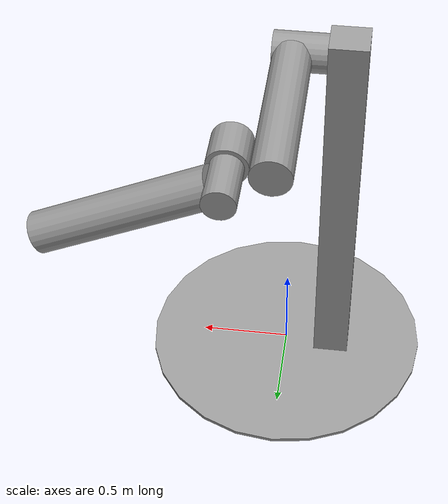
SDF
<?xml version='1.0'?>
<sdf version="1.4">
  <model name="double_pendulum_with_base">
    <link name="base">
      <inertial>
        <mass>100</mass>
        <inertia>
          <ixx>1.0</ixx> <ixy>0.0</ixy> <ixz>0.0</ixz>
          <iyy>2.0</iyy> <iyz>0.0</iyz>
          <izz>3.0</izz>
        </inertia>
      </inertial>
      <visual name="vis_plate_on_ground">
        <pose>0 0 0.01  0 0 0</pose>
        <geometry>
          <cylinder>
            <radius>0.8</radius>
            <length>0.02</length>
          </cylinder>
        </geometry>
        <material>
          <script>
            <uri>file://media/materials/scripts/gazebo.material</uri>
            <name>Gazebo/Grey</name>
          </script>
        </material>
      </visual>
      <visual name="vis_pole">
        <pose>-0.275 0 1.1  0 0 0</pose>
        <geometry>
          <box><size>0.2 0.2 2.2</size></box>
        </geometry>
        <material>
          <script>
            <uri>file://media/materials/scripts/gazebo.material</uri>
            <name>Gazebo/Grey</name>
          </script>
        </material>
      </visual>
      <collision name="col_plate_on_ground">
        <pose>0 0 0.01  0 0 0</pose>
        <geometry>
          <cylinder>
            <radius>0.8</radius>
            <length>0.02</length>
          </cylinder>
        </geometry>
      </collision>
      <collision name="col_pole">
        <pose>-0.275 0 1.1  0 0 0</pose>
        <geometry>
          <box><size>0.2 0.2 2.2</size></box>
        </geometry>
      </collision>
    </link>
    <!-- upper link, length 1, IC -90 degrees -->
    <link name="upper_link">
      <pose>0 0 2.1  -1.5708 0 0</pose>
      <self_collide>0</self_collide>
      <inertial>
        <pose>0 0 0.5  0 0 0</pose>
        <mass>1.0</mass>
        <inertia>
          <ixx>0.01</ixx> <ixy>0.0</ixy> <ixz>0.0</ixz>
          <iyy>0.00002</iyy> <iyz>0.0</iyz>
          <izz>0.00003</izz>
        </inertia>
      </inertial>
      <visual name="vis_upper_joint">
        <pose>-0.05 0 0  0 1.5708 0</pose>
        <geometry>
          <cylinder>
            <radius>0.1</radius>
            <length>0.3</length>
          </cylinder>
        </geometry>
        <material>
          <script>
            <uri>file://media/materials/scripts/gazebo.material</uri>
            <name>Gazebo/Grey</name>
          </script>
        </material>
      </visual>
      <visual name="vis_lower_joint">
        <pose>0.2 0 0.8  0 0 0</pose>
        <geometry>
          <cylinder>
            <radius>0.1</radius>
            <length>0.2</length>
          </cylinder>
        </geometry>
        <material>
          <script>
            <uri>file://media/materials/scripts/gazebo.material</uri>
            <name>Gazebo/Grey</name>
          </script>
        </material>
      </visual>
      <visual name="vis_cylinder">
        <pose>0 0 0.5  0 0 0</pose>
        <geometry>
          <cylinder>
            <radius>0.1</radius>
            <length>0.9</length>
          </cylinder>
        </geometry>
        <material>
          <script>
            <uri>file://media/materials/scripts/gazebo.material</uri>
            <name>Gazebo/Grey</name>
          </script>
        </material>
      </visual>
      <collision name="col_upper_joint">
        <pose>-0.05 0 0  0 1.5708 0</pose>
        <geometry>
          <cylinder>
            <radius>0.1</radius>
            <length>0.3</length>
          </cylinder>
        </geometry>
      </collision>
      <collision name="col_lower_joint">
        <pose>0 0 1.0  0 1.5708 0</pose>
        <geometry>
          <cylinder>
            <radius>0.1</radius>
            <length>0.2</length>
          </cylinder>
        </geometry>
      </collision>
      <collision name="col_cylinder">
        <pose>0 0 0.5  0 0 0</pose>
        <geometry>
          <cylinder>
            <radius>0.1</radius>
            <length>0.9</length>
          </cylinder>
        </geometry>
      </collision>
    </link>
    <!-- lower link, length 1, IC ~-120 degrees more -->
    <link name="lower_link">
      <pose>0.2 1.0 2.1  -2 0 -1.5708</pose>
      <self_collide>0</self_collide>
      <inertial>
        <pose>0 0 0.5  0 0 0</pose>
        <mass>0.01</mass>
        <inertia>
          <ixx>0.0001</ixx> <ixy>0.0</ixy> <ixz>0.0</ixz>
          <iyy>0.00000002</iyy> <iyz>0.0</iyz>
          <izz>0.00000003</izz>
        </inertia>
      </inertial>
      <visual name="vis_lower_joint">
        <pose>0 0 0  0 1.5708 0</pose>
        <geometry>
          <cylinder>
            <radius>0.08</radius>
            <length>0.3</length>
          </cylinder>
        </geometry>
        <material>
          <script>
            <uri>file://media/materials/scripts/gazebo.material</uri>
            <name>Gazebo/Grey</name>
          </script>
        </material>
      </visual>
      <visual name="vis_cylinder">
        <pose>0 0 0.5  0 0 0</pose>
        <geometry>
          <cylinder>
            <radius>0.1</radius>
            <length>0.9</length>
          </cylinder>
        </geometry>
        <material>
          <script>
            <uri>file://media/materials/scripts/gazebo.material</uri>
            <name>Gazebo/Grey</name>
          </script>
        </material>
      </visual>
      <collision name="col_lower_joint">
        <pose>0 0 0  0 1.5708 0</pose>
        <geometry>
          <cylinder>
            <radius>0.08</radius>
            <length>0.3</length>
          </cylinder>
        </geometry>
      </collision>
      <collision name="col_cylinder">
        <pose>0 0 0.5  0 0 0</pose>
        <geometry>
          <cylinder>
            <radius>0.1</radius>
            <length>0.9</length>
          </cylinder>
        </geometry>
      </collision>
    </link>
    <!-- pin joint for upper link, at origin of upper link -->
    <joint name="upper_joint" type="revolute">
      <parent>base</parent>
      <child>upper_link</child>
      <axis>
        <xyz>1.0 0 0</xyz>
      </axis>
    </joint>
    <!-- pin joint for lower link, at origin of child link -->
    <joint name="lower_joint" type="revolute">
      <parent>upper_link</parent>
      <child>lower_link</child>
      <axis>
        <xyz>0 1.0 0</xyz>
      </axis>
    </joint>
  </model>
</sdf>
